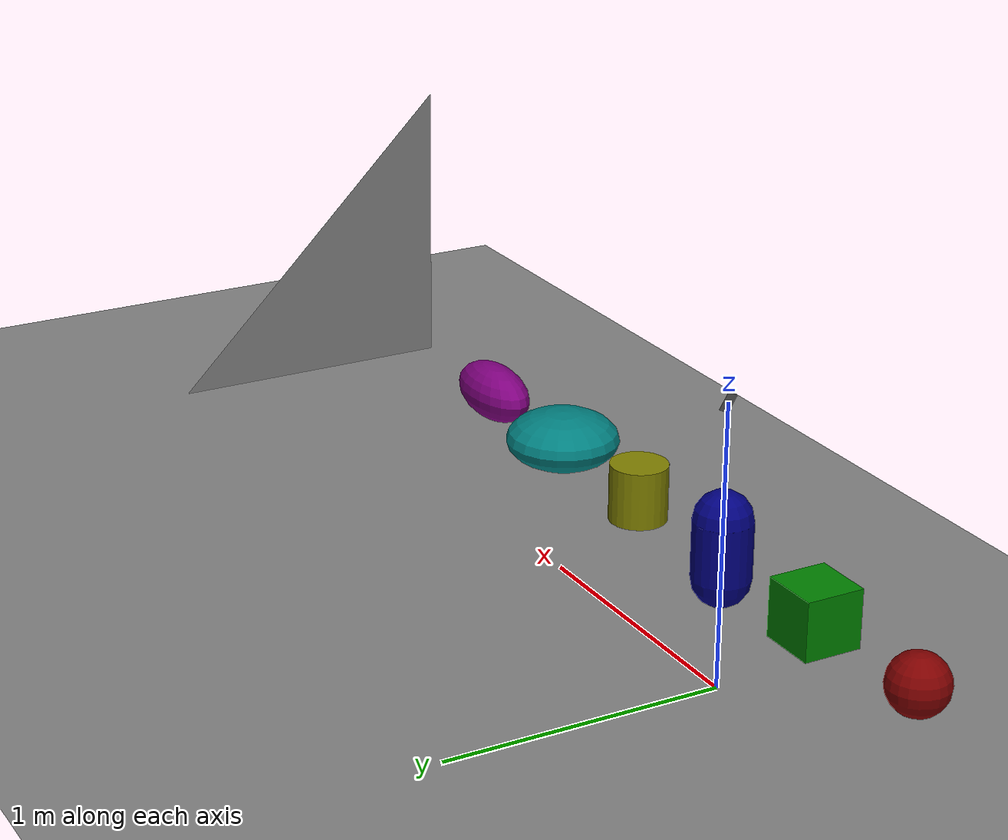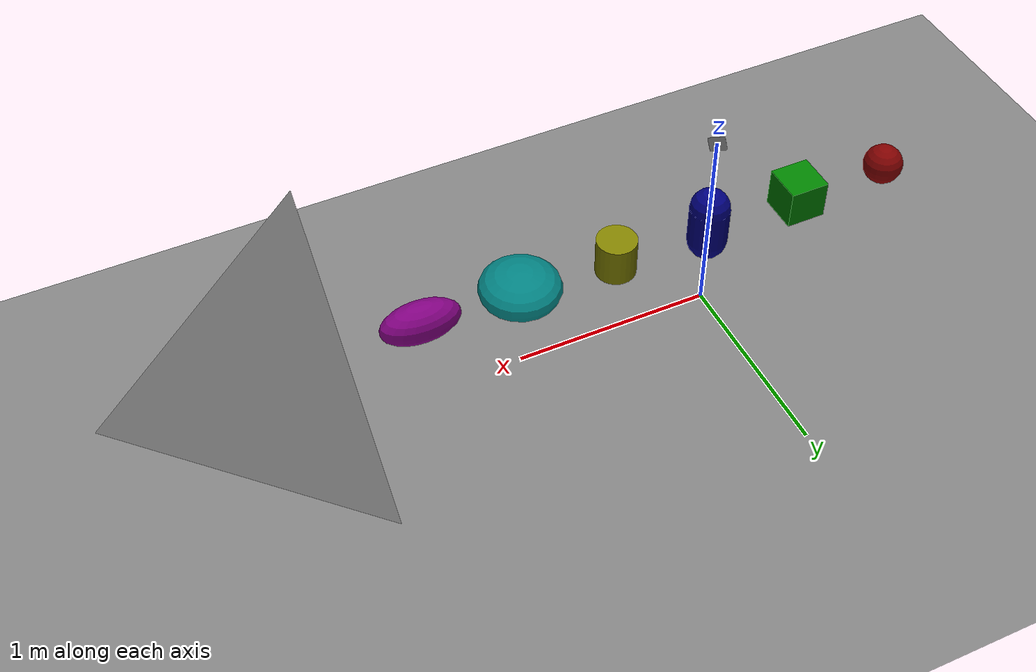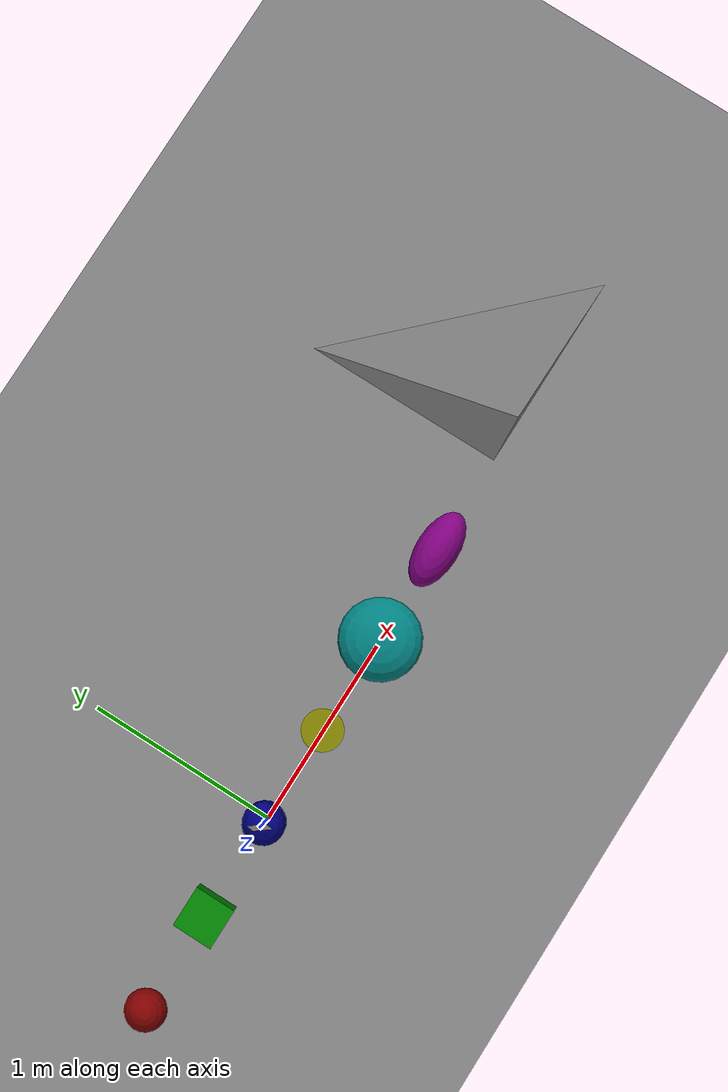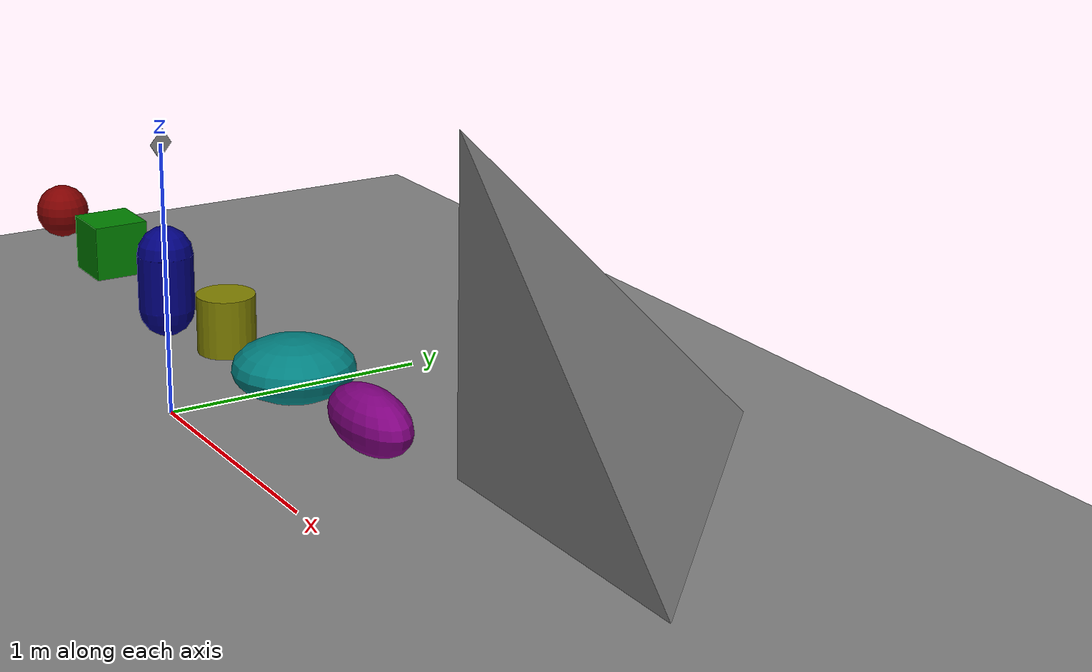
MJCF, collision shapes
<?xml version="1.0" encoding="utf-8"?>
<mujoco model="inverted_pendulum">
    <compiler angle="radian" meshdir="meshes" autolimits="true" />
    <option timestep="0.002" gravity="0 0 -9.81" wind="0 0 0" integrator="implicitfast"
        density="1.225"
        viscosity="1.8e-5" />

    <visual>
        <global realtime="1" />
        <quality shadowsize="16384" numslices="28" offsamples="4" />
        <headlight diffuse="1 1 1" specular="0.5 0.5 0.5" active="1" />
        <rgba fog="1 0 0 1" haze="1 1 1 1" />
    </visual>

    <asset>
        <mesh name="tetrahedron" vertex="0 0 0 1 0 0 0 1 0 0 0 1" />
        <mesh file="card.obj" scale="1 1 1" />
        <texture type="2d" file="./king_of_clubs.png" />
        <material name="king_of_clubs" texture="king_of_clubs" />
        <hfield name="agent_eval_gym" file="agent_eval_gym.png" size="10 10 1 1" />
        <texture type="skybox" file="../asset/desert.png"
            gridsize="3 4" gridlayout=".U..LFRB.D.." />

        <texture name="plane" type="2d" builtin="checker" rgb1=".1 .1 .1" rgb2=".9 .9 .9"
            width="512" height="512" mark="cross" markrgb=".8 .8 .8" />
        <material name="plane" reflectance="0.3" texture="plane" texrepeat="1 1" texuniform="true" />
        <material name="box" rgba="0 0.5 0 1" emission="0" />
    </asset>

    <default>
        <geom solref=".5e-4" solimp="0.9 0.99 1e-4" fluidcoef="0.5 0.25 0.5 2.0 1.0" />
        <default class="card">
            <geom type="mesh" mesh="card" mass="1.84e-4" fluidshape="ellipsoid" contype="0"
                conaffinity="0" />
        </default>
        <default class="collision">
            <geom type="box" mass="0" size="0.047 0.032 .00035" group="3" friction=".1" />
        </default>
    </default>

    <worldbody>
        <geom name="floor" pos="0 0 0" size="0 0 .25" type="plane" material="plane"
            condim="3" />
        <light directional="true" ambient=".3 .3 .3" pos="30 30 30" dir="0 -2 -1"
            diffuse=".5 .5 .5" specular=".5 .5 .5" />

        <body pos="0 0 1" euler="-45 45 0">
            <freejoint />
            <geom class="card" material="king_of_clubs" />
            <geom class="collision" />
        </body>

        <body pos="-1 0 .5">
            <freejoint />
            <geom type="sphere" size="0.1" rgba=".5 0 0 1" />
        </body>
        <body pos="-0.5 0 .5">
            <freejoint />
            <geom type="box" size="0.1 0.1 0.1" material="box" />
        </body>
        <body pos="0 0 .5">
            <freejoint />
            <geom type="capsule" size="0.1 0.1" rgba="0 0 .5 1" />
        </body>
        <body pos=".5 0 .5">
            <freejoint />
            <geom type="cylinder" size="0.1 0.1" rgba=".5 .5 0 1" />
        </body>
        <body pos="1 0 .5">
            <freejoint />
            <geom type="ellipsoid" size="0.2 0.2 0.1" rgba="0 .5 .5 1" />
        </body>
        <body pos="1.5 0 .5">
            <freejoint />
            <geom type="ellipsoid" size="0.2 0.1 0.1" rgba=".5 0 .5 1" />
        </body>

        <body pos="2.0 0 .5">
            <freejoint />
            <geom type="mesh" mesh="tetrahedron" rgba=".5 .5 .5 1" />
        </body>
    </worldbody>
</mujoco>
